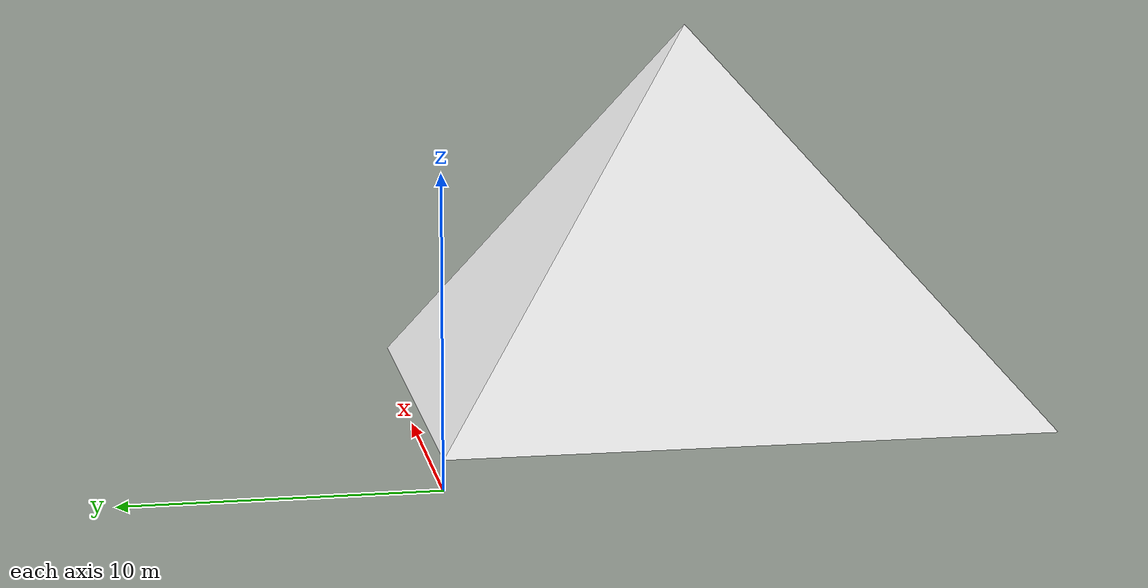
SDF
<?xml version="1.0" ?>
<sdf version="1.6">
  <model name="piramid_qr_added">
    <pose>0 0 1 0 0 0</pose>
    <static>true</static>
    <link name="link">
      <visual name="visual">
        <geometry>
          <mesh>
            <scale>17 17 17</scale>
            <uri>model://piramid_qr_added/meshes/piramid_qr_added.dae</uri>
          </mesh>
        </geometry>
        <material>
          <script>
            <name>Gazebo/White</name>
          </script>
        </material>
      </visual>
    </link>
  </model>
</sdf>
